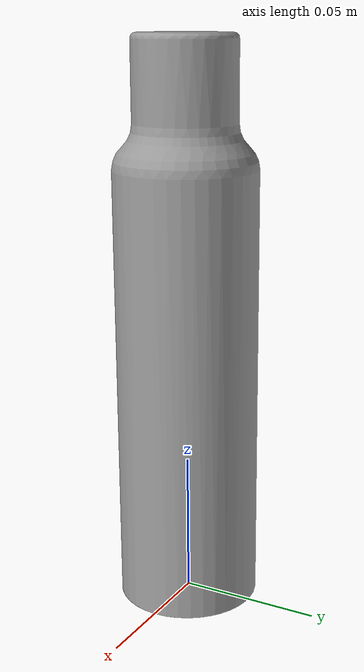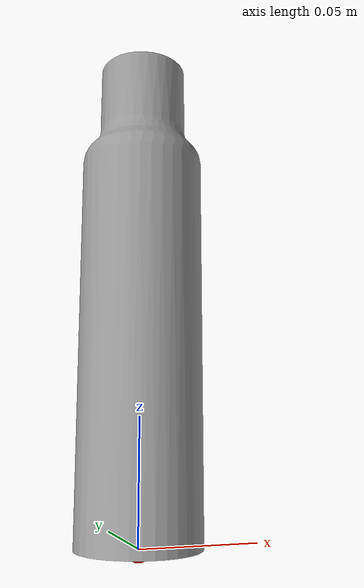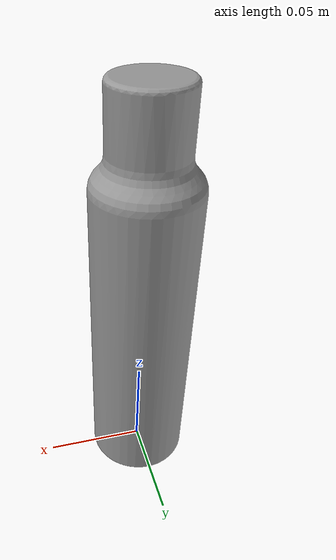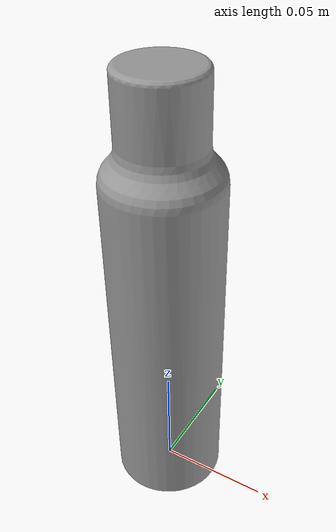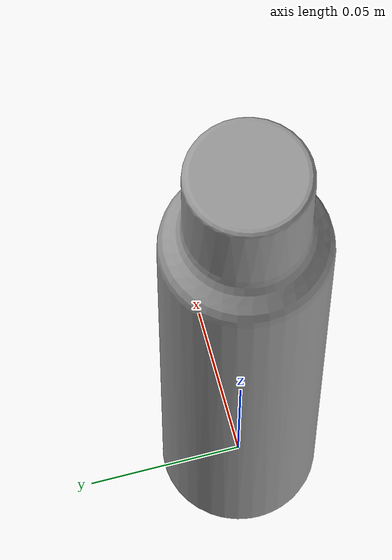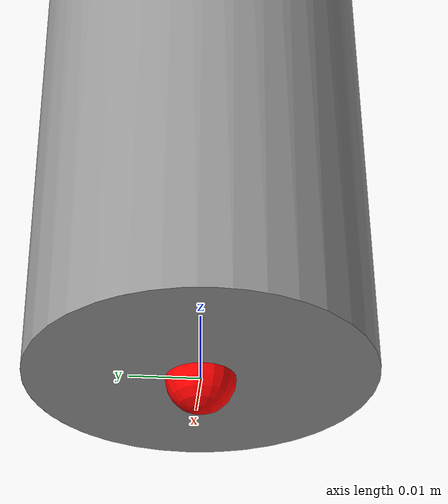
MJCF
<mujoco model="painting_gun">
  <compiler angle="radian"/>
  <option timestep="0.01"/>

  <visual>
    <headlight diffuse="0.6 0.6 0.6" ambient="0.1 0.1 0.1" specular="0 0 0"/>
    <rgba haze="0.15 0.25 0.35 1"/>
    <global azimuth="120" elevation="-20"/>
  </visual>

  <asset>
    <mesh name="tool_mesh" file="painting_gun.obj"/>
    <!-- Painting gun collision mesh -->
    <mesh name="painting_gun_collision_mesh" file="painting_gun.obj"/>
  </asset>

  <default>
    <geom condim="3" friction="1 0.5 0.01" solref="0.02 1" solimp="0.9 0.95 0.001"/>
  </default>

  <worldbody>
    <body name="tool_base" pos="0 0 0">
      <inertial mass="0.752" pos="0.0 0.0 0.01" diaginertia="0.0143 0.0143 0.0016"/>
      <geom type="mesh" mesh="tool_mesh" rgba="0.6 0.6 0.6 1" contype="0" conaffinity="0" group="0"/>
      <!-- collision mesh -->
      <geom name="painting_gun_collision"
                            type="mesh"
                            mesh="painting_gun_collision_mesh"
                            pos="0 0 0.0"
                            rgba="0.7 0.1 0.1 0.3"
                            contype="1" conaffinity="1"
                            group="3" />
      <!-- Marker (red sphere) to specify the origin -->
      <site name="mount_site" pos="0 0 0" size="0.005" rgba="1 0 0 1"/>
      <!-- Marker (green sphere) to specify the point of application of the weight -->
    </body>
  </worldbody>
</mujoco>
